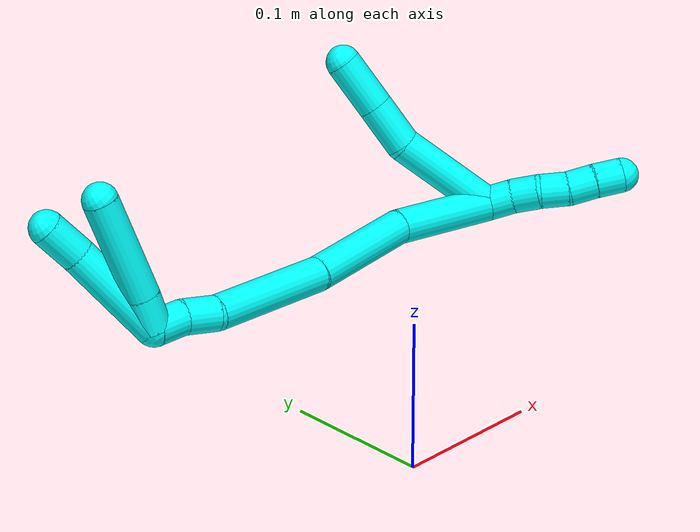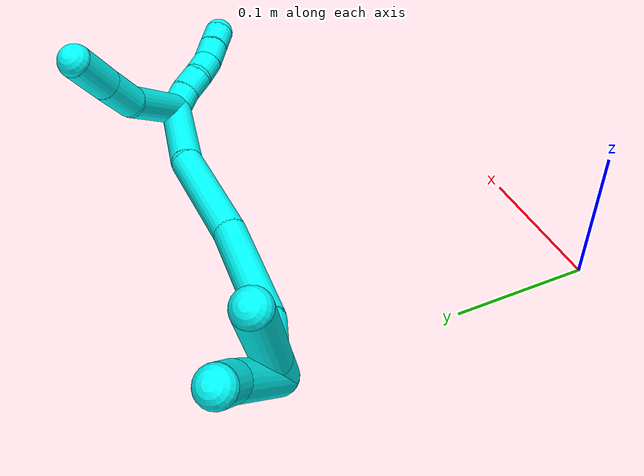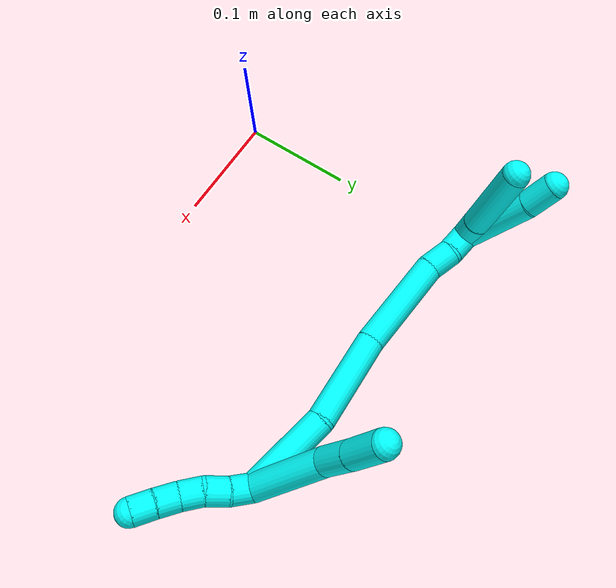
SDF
<sdf version="1.7">
 <world name="default">
  <model name="3">
   <static>0</static>
   <link name="3">
    <collision name="collision-cylinder-e_1_2_8">
     <pose>-0.011875 -0.002019 -0.036194 3.08586 -0.316577 -2.79582</pose>
     <geometry><cylinder><radius>0.0125</radius><length>0.076292</length></cylinder></geometry>
     <surface>
      <friction><ode><mu>1.16</mu><mu2>1.16</mu2><slip1>0</slip1><slip2>0</slip2></ode></friction>
      <contact><ode><kp>1e+06</kp><kd>1</kd><max_vel>0</max_vel><min_depth>0.001</min_depth></ode></contact>
     </surface>
    </collision>
    <visual name="visual-cylinder-e_1_2_8">
     <pose>-0.011875 -0.002019 -0.036194 3.08586 -0.316577 -2.79582</pose>
     <geometry><cylinder><radius>0.0125</radius><length>0.076292</length></cylinder></geometry>
     <material><ambient>0.003922 1 0.996078 1</ambient></material>
    </visual>
    <collision name="collision-cylinder-e_2_8_9">
     <pose>-0.024077 -0.007121 -0.089459 2.96297 -0.018819 -0.20939</pose>
     <geometry><cylinder><radius>0.0125</radius><length>0.0347</length></cylinder></geometry>
     <surface>
      <friction><ode><mu>1.16</mu><mu2>1.16</mu2><slip1>0</slip1><slip2>0</slip2></ode></friction>
      <contact><ode><kp>1e+06</kp><kd>1</kd><max_vel>0</max_vel><min_depth>0.001</min_depth></ode></contact>
     </surface>
    </collision>
    <visual name="visual-cylinder-e_2_8_9">
     <pose>-0.024077 -0.007121 -0.089459 2.96297 -0.018819 -0.20939</pose>
     <geometry><cylinder><radius>0.0125</radius><length>0.0347</length></cylinder></geometry>
     <material><ambient>0.003922 1 0.996078 1</ambient></material>
    </visual>
    <collision name="collision-cylinder-e_3_9_6">
     <pose>-0.024703 -0.012903 -0.125844 3.00269 -0.015343 -0.219671</pose>
     <geometry><cylinder><radius>0.0125</radius><length>0.039008</length></cylinder></geometry>
     <surface>
      <friction><ode><mu>1.16</mu><mu2>1.16</mu2><slip1>0</slip1><slip2>0</slip2></ode></friction>
      <contact><ode><kp>1e+06</kp><kd>1</kd><max_vel>0</max_vel><min_depth>0.001</min_depth></ode></contact>
     </surface>
    </collision>
    <visual name="visual-cylinder-e_3_9_6">
     <pose>-0.024703 -0.012903 -0.125844 3.00269 -0.015343 -0.219671</pose>
     <geometry><cylinder><radius>0.0125</radius><length>0.039008</length></cylinder></geometry>
     <material><ambient>0.003922 1 0.996078 1</ambient></material>
    </visual>
    <collision name="collision-cylinder-e_1_2_10">
     <pose>0.009548 0.000389 0.002947 -0.131381 1.26897 -0.096761</pose>
     <geometry><cylinder><radius>0.0125</radius><length>0.02</length></cylinder></geometry>
     <surface>
      <friction><ode><mu>1.16</mu><mu2>1.16</mu2><slip1>0</slip1><slip2>0</slip2></ode></friction>
      <contact><ode><kp>1e+06</kp><kd>1</kd><max_vel>0</max_vel><min_depth>0.001</min_depth></ode></contact>
     </surface>
    </collision>
    <visual name="visual-cylinder-e_1_2_10">
     <pose>0.009548 0.000389 0.002947 -0.131381 1.26897 -0.096761</pose>
     <geometry><cylinder><radius>0.0125</radius><length>0.02</length></cylinder></geometry>
     <material><ambient>0.003922 1 0.996078 1</ambient></material>
    </visual>
    <collision name="collision-cylinder-e_2_10_11">
     <pose>0.028309 0.002963 0.009112 -0.596347 1.17133 -0.402198</pose>
     <geometry><cylinder><radius>0.0125</radius><length>0.02</length></cylinder></geometry>
     <surface>
      <friction><ode><mu>1.16</mu><mu2>1.16</mu2><slip1>0</slip1><slip2>0</slip2></ode></friction>
      <contact><ode><kp>1e+06</kp><kd>1</kd><max_vel>0</max_vel><min_depth>0.001</min_depth></ode></contact>
     </surface>
    </collision>
    <visual name="visual-cylinder-e_2_10_11">
     <pose>0.028309 0.002963 0.009112 -0.596347 1.17133 -0.402198</pose>
     <geometry><cylinder><radius>0.0125</radius><length>0.02</length></cylinder></geometry>
     <material><ambient>0.003922 1 0.996078 1</ambient></material>
    </visual>
    <collision name="collision-cylinder-e_3_11_12">
     <pose>0.046242 0.005453 0.017215 -0.062426 1.05937 -0.036558</pose>
     <geometry><cylinder><radius>0.0125</radius><length>0.02</length></cylinder></geometry>
     <surface>
      <friction><ode><mu>1.16</mu><mu2>1.16</mu2><slip1>0</slip1><slip2>0</slip2></ode></friction>
      <contact><ode><kp>1e+06</kp><kd>1</kd><max_vel>0</max_vel><min_depth>0.001</min_depth></ode></contact>
     </surface>
    </collision>
    <visual name="visual-cylinder-e_3_11_12">
     <pose>0.046242 0.005453 0.017215 -0.062426 1.05937 -0.036558</pose>
     <geometry><cylinder><radius>0.0125</radius><length>0.02</length></cylinder></geometry>
     <material><ambient>0.003922 1 0.996078 1</ambient></material>
    </visual>
    <collision name="collision-cylinder-e_4_12_13">
     <pose>0.064297 0.004914 0.025586 0.237517 1.20389 0.163579</pose>
     <geometry><cylinder><radius>0.0125</radius><length>0.02</length></cylinder></geometry>
     <surface>
      <friction><ode><mu>1.16</mu><mu2>1.16</mu2><slip1>0</slip1><slip2>0</slip2></ode></friction>
      <contact><ode><kp>1e+06</kp><kd>1</kd><max_vel>0</max_vel><min_depth>0.001</min_depth></ode></contact>
     </surface>
    </collision>
    <visual name="visual-cylinder-e_4_12_13">
     <pose>0.064297 0.004914 0.025586 0.237517 1.20389 0.163579</pose>
     <geometry><cylinder><radius>0.0125</radius><length>0.02</length></cylinder></geometry>
     <material><ambient>0.003922 1 0.996078 1</ambient></material>
    </visual>
    <collision name="collision-cylinder-e_5_13_5">
     <pose>0.082656 0.002975 0.033238 0.257071 1.12555 0.162705</pose>
     <geometry><cylinder><radius>0.0125</radius><length>0.02</length></cylinder></geometry>
     <surface>
      <friction><ode><mu>1.16</mu><mu2>1.16</mu2><slip1>0</slip1><slip2>0</slip2></ode></friction>
      <contact><ode><kp>1e+06</kp><kd>1</kd><max_vel>0</max_vel><min_depth>0.001</min_depth></ode></contact>
     </surface>
    </collision>
    <visual name="visual-cylinder-e_5_13_5">
     <pose>0.082656 0.002975 0.033238 0.257071 1.12555 0.162705</pose>
     <geometry><cylinder><radius>0.0125</radius><length>0.02</length></cylinder></geometry>
     <material><ambient>0.003922 1 0.996078 1</ambient></material>
    </visual>
    <collision name="collision-cylinder-e_1_2_14">
     <pose>-0.027312 0.019993 -0.019486 -2.34336 -0.774429 1.53717</pose>
     <geometry><cylinder><radius>0.0125</radius><length>0.078112</length></cylinder></geometry>
     <surface>
      <friction><ode><mu>1.16</mu><mu2>1.16</mu2><slip1>0</slip1><slip2>0</slip2></ode></friction>
      <contact><ode><kp>1e+06</kp><kd>1</kd><max_vel>0</max_vel><min_depth>0.001</min_depth></ode></contact>
     </surface>
    </collision>
    <visual name="visual-cylinder-e_1_2_14">
     <pose>-0.027312 0.019993 -0.019486 -2.34336 -0.774429 1.53717</pose>
     <geometry><cylinder><radius>0.0125</radius><length>0.078112</length></cylinder></geometry>
     <material><ambient>0.003922 1 0.996078 1</ambient></material>
    </visual>
    <collision name="collision-cylinder-e_2_14_15">
     <pose>-0.08135 0.069649 -0.052649 -2.0028 -0.685726 1.0174</pose>
     <geometry><cylinder><radius>0.0125</radius><length>0.08441</length></cylinder></geometry>
     <surface>
      <friction><ode><mu>1.16</mu><mu2>1.16</mu2><slip1>0</slip1><slip2>0</slip2></ode></friction>
      <contact><ode><kp>1e+06</kp><kd>1</kd><max_vel>0</max_vel><min_depth>0.001</min_depth></ode></contact>
     </surface>
    </collision>
    <visual name="visual-cylinder-e_2_14_15">
     <pose>-0.08135 0.069649 -0.052649 -2.0028 -0.685726 1.0174</pose>
     <geometry><cylinder><radius>0.0125</radius><length>0.08441</length></cylinder></geometry>
     <material><ambient>0.003922 1 0.996078 1</ambient></material>
    </visual>
    <collision name="collision-cylinder-e_3_15_16">
     <pose>-0.137589 0.126803 -0.085571 -2.18161 -0.721368 1.25398</pose>
     <geometry><cylinder><radius>0.0125</radius><length>0.089378</length></cylinder></geometry>
     <surface>
      <friction><ode><mu>1.16</mu><mu2>1.16</mu2><slip1>0</slip1><slip2>0</slip2></ode></friction>
      <contact><ode><kp>1e+06</kp><kd>1</kd><max_vel>0</max_vel><min_depth>0.001</min_depth></ode></contact>
     </surface>
    </collision>
    <visual name="visual-cylinder-e_3_15_16">
     <pose>-0.137589 0.126803 -0.085571 -2.18161 -0.721368 1.25398</pose>
     <geometry><cylinder><radius>0.0125</radius><length>0.089378</length></cylinder></geometry>
     <material><ambient>0.003922 1 0.996078 1</ambient></material>
    </visual>
    <collision name="collision-cylinder-e_4_16_17">
     <pose>-0.175955 0.158891 -0.112127 -2.57999 -0.797799 1.94139</pose>
     <geometry><cylinder><radius>0.0125</radius><length>0.024734</length></cylinder></geometry>
     <surface>
      <friction><ode><mu>1.16</mu><mu2>1.16</mu2><slip1>0</slip1><slip2>0</slip2></ode></friction>
      <contact><ode><kp>1e+06</kp><kd>1</kd><max_vel>0</max_vel><min_depth>0.001</min_depth></ode></contact>
     </surface>
    </collision>
    <visual name="visual-cylinder-e_4_16_17">
     <pose>-0.175955 0.158891 -0.112127 -2.57999 -0.797799 1.94139</pose>
     <geometry><cylinder><radius>0.0125</radius><length>0.024734</length></cylinder></geometry>
     <material><ambient>0.003922 1 0.996078 1</ambient></material>
    </visual>
    <collision name="collision-cylinder-e_5_17_1">
     <pose>-0.193086 0.170233 -0.124178 -2.18368 -0.787497 1.34952</pose>
     <geometry><cylinder><radius>0.0125</radius><length>0.023366</length></cylinder></geometry>
     <surface>
      <friction><ode><mu>1.16</mu><mu2>1.16</mu2><slip1>0</slip1><slip2>0</slip2></ode></friction>
      <contact><ode><kp>1e+06</kp><kd>1</kd><max_vel>0</max_vel><min_depth>0.001</min_depth></ode></contact>
     </surface>
    </collision>
    <visual name="visual-cylinder-e_5_17_1">
     <pose>-0.193086 0.170233 -0.124178 -2.18368 -0.787497 1.34952</pose>
     <geometry><cylinder><radius>0.0125</radius><length>0.023366</length></cylinder></geometry>
     <material><ambient>0.003922 1 0.996078 1</ambient></material>
    </visual>
    <collision name="collision-cylinder-e_1_1_18">
     <pose>-0.197478 0.176737 -0.141078 3.12186 0.309304 3.0152</pose>
     <geometry><cylinder><radius>0.0125</radius><length>0.025532</length></cylinder></geometry>
     <surface>
      <friction><ode><mu>1.16</mu><mu2>1.16</mu2><slip1>0</slip1><slip2>0</slip2></ode></friction>
      <contact><ode><kp>1e+06</kp><kd>1</kd><max_vel>0</max_vel><min_depth>0.001</min_depth></ode></contact>
     </surface>
    </collision>
    <visual name="visual-cylinder-e_1_1_18">
     <pose>-0.197478 0.176737 -0.141078 3.12186 0.309304 3.0152</pose>
     <geometry><cylinder><radius>0.0125</radius><length>0.025532</length></cylinder></geometry>
     <material><ambient>0.003922 1 0.996078 1</ambient></material>
    </visual>
    <collision name="collision-cylinder-e_2_18_4">
     <pose>-0.184062 0.177458 -0.189217 -3.11488 0.258837 -2.93704</pose>
     <geometry><cylinder><radius>0.0125</radius><length>0.074468</length></cylinder></geometry>
     <surface>
      <friction><ode><mu>1.16</mu><mu2>1.16</mu2><slip1>0</slip1><slip2>0</slip2></ode></friction>
      <contact><ode><kp>1e+06</kp><kd>1</kd><max_vel>0</max_vel><min_depth>0.001</min_depth></ode></contact>
     </surface>
    </collision>
    <visual name="visual-cylinder-e_2_18_4">
     <pose>-0.184062 0.177458 -0.189217 -3.11488 0.258837 -2.93704</pose>
     <geometry><cylinder><radius>0.0125</radius><length>0.074468</length></cylinder></geometry>
     <material><ambient>0.003922 1 0.996078 1</ambient></material>
    </visual>
    <collision name="collision-cylinder-e_1_1_19">
     <pose>-0.20678 0.173282 -0.164018 3.03671 -0.152288 -1.9363</pose>
     <geometry><cylinder><radius>0.0125</radius><length>0.071409</length></cylinder></geometry>
     <surface>
      <friction><ode><mu>1.16</mu><mu2>1.16</mu2><slip1>0</slip1><slip2>0</slip2></ode></friction>
      <contact><ode><kp>1e+06</kp><kd>1</kd><max_vel>0</max_vel><min_depth>0.001</min_depth></ode></contact>
     </surface>
    </collision>
    <visual name="visual-cylinder-e_1_1_19">
     <pose>-0.20678 0.173282 -0.164018 3.03671 -0.152288 -1.9363</pose>
     <geometry><cylinder><radius>0.0125</radius><length>0.071409</length></cylinder></geometry>
     <material><ambient>0.003922 1 0.996078 1</ambient></material>
    </visual>
    <collision name="collision-cylinder-e_2_19_3">
     <pose>-0.214458 0.170248 -0.213215 -3.09478 -0.158816 2.56931</pose>
     <geometry><cylinder><radius>0.0125</radius><length>0.028591</length></cylinder></geometry>
     <surface>
      <friction><ode><mu>1.16</mu><mu2>1.16</mu2><slip1>0</slip1><slip2>0</slip2></ode></friction>
      <contact><ode><kp>1e+06</kp><kd>1</kd><max_vel>0</max_vel><min_depth>0.001</min_depth></ode></contact>
     </surface>
    </collision>
    <visual name="visual-cylinder-e_2_19_3">
     <pose>-0.214458 0.170248 -0.213215 -3.09478 -0.158816 2.56931</pose>
     <geometry><cylinder><radius>0.0125</radius><length>0.028591</length></cylinder></geometry>
     <material><ambient>0.003922 1 0.996078 1</ambient></material>
    </visual>
    <collision name="collision-sphere-3">
     <pose>-0.216719 0.170908 -0.227315 0 -0 0</pose>
     <geometry><sphere><radius>0.0125</radius></sphere></geometry>
     <surface>
      <friction><ode><mu>1.16</mu><mu2>1.16</mu2><slip1>0</slip1><slip2>0</slip2></ode></friction>
      <contact><ode><kp>1e+06</kp><kd>1</kd><max_vel>0</max_vel><min_depth>0.001</min_depth></ode></contact>
     </surface>
    </collision>
    <visual name="visual-sphere-3">
     <pose>-0.216719 0.170908 -0.227315 0 -0 0</pose>
     <geometry><sphere><radius>0.0125</radius></sphere></geometry>
     <material><ambient>0.003922 1 0.996078 1</ambient></material>
    </visual>
    <collision name="collision-sphere-19">
     <pose>-0.212197 0.169587 -0.199115 0 -0 0</pose>
     <geometry><sphere><radius>0.0125</radius></sphere></geometry>
     <surface>
      <friction><ode><mu>1.16</mu><mu2>1.16</mu2><slip1>0</slip1><slip2>0</slip2></ode></friction>
      <contact><ode><kp>1e+06</kp><kd>1</kd><max_vel>0</max_vel><min_depth>0.001</min_depth></ode></contact>
     </surface>
    </collision>
    <visual name="visual-sphere-19">
     <pose>-0.212197 0.169587 -0.199115 0 -0 0</pose>
     <geometry><sphere><radius>0.0125</radius></sphere></geometry>
     <material><ambient>0.003922 1 0.996078 1</ambient></material>
    </visual>
    <collision name="collision-sphere-11">
     <pose>0.037521 0.005147 0.01233 0 -0 0</pose>
     <geometry><sphere><radius>0.0125</radius></sphere></geometry>
     <surface>
      <friction><ode><mu>1.16</mu><mu2>1.16</mu2><slip1>0</slip1><slip2>0</slip2></ode></friction>
      <contact><ode><kp>1e+06</kp><kd>1</kd><max_vel>0</max_vel><min_depth>0.001</min_depth></ode></contact>
     </surface>
    </collision>
    <visual name="visual-sphere-11">
     <pose>0.037521 0.005147 0.01233 0 -0 0</pose>
     <geometry><sphere><radius>0.0125</radius></sphere></geometry>
     <material><ambient>0.003922 1 0.996078 1</ambient></material>
    </visual>
    <collision name="collision-sphere-10">
     <pose>0.019096 0.000779 0.005894 0 -0 0</pose>
     <geometry><sphere><radius>0.0125</radius></sphere></geometry>
     <surface>
      <friction><ode><mu>1.16</mu><mu2>1.16</mu2><slip1>0</slip1><slip2>0</slip2></ode></friction>
      <contact><ode><kp>1e+06</kp><kd>1</kd><max_vel>0</max_vel><min_depth>0.001</min_depth></ode></contact>
     </surface>
    </collision>
    <visual name="visual-sphere-10">
     <pose>0.019096 0.000779 0.005894 0 -0 0</pose>
     <geometry><sphere><radius>0.0125</radius></sphere></geometry>
     <material><ambient>0.003922 1 0.996078 1</ambient></material>
    </visual>
    <collision name="collision-sphere-6">
     <pose>-0.025002 -0.015603 -0.145158 0 -0 0</pose>
     <geometry><sphere><radius>0.0125</radius></sphere></geometry>
     <surface>
      <friction><ode><mu>1.16</mu><mu2>1.16</mu2><slip1>0</slip1><slip2>0</slip2></ode></friction>
      <contact><ode><kp>1e+06</kp><kd>1</kd><max_vel>0</max_vel><min_depth>0.001</min_depth></ode></contact>
     </surface>
    </collision>
    <visual name="visual-sphere-6">
     <pose>-0.025002 -0.015603 -0.145158 0 -0 0</pose>
     <geometry><sphere><radius>0.0125</radius></sphere></geometry>
     <material><ambient>0.003922 1 0.996078 1</ambient></material>
    </visual>
    <collision name="collision-sphere-9">
     <pose>-0.024404 -0.010203 -0.10653 0 -0 0</pose>
     <geometry><sphere><radius>0.0125</radius></sphere></geometry>
     <surface>
      <friction><ode><mu>1.16</mu><mu2>1.16</mu2><slip1>0</slip1><slip2>0</slip2></ode></friction>
      <contact><ode><kp>1e+06</kp><kd>1</kd><max_vel>0</max_vel><min_depth>0.001</min_depth></ode></contact>
     </surface>
    </collision>
    <visual name="visual-sphere-9">
     <pose>-0.024404 -0.010203 -0.10653 0 -0 0</pose>
     <geometry><sphere><radius>0.0125</radius></sphere></geometry>
     <material><ambient>0.003922 1 0.996078 1</ambient></material>
    </visual>
    <collision name="collision-sphere-2">
     <geometry><sphere><radius>0.0125</radius></sphere></geometry>
     <surface>
      <friction><ode><mu>1.16</mu><mu2>1.16</mu2><slip1>0</slip1><slip2>0</slip2></ode></friction>
      <contact><ode><kp>1e+06</kp><kd>1</kd><max_vel>0</max_vel><min_depth>0.001</min_depth></ode></contact>
     </surface>
    </collision>
    <visual name="visual-sphere-2">
     <geometry><sphere><radius>0.0125</radius></sphere></geometry>
     <material><ambient>0.003922 1 0.996078 1</ambient></material>
    </visual>
    <collision name="collision-sphere-8">
     <pose>-0.023751 -0.004039 -0.072388 0 -0 0</pose>
     <geometry><sphere><radius>0.0125</radius></sphere></geometry>
     <surface>
      <friction><ode><mu>1.16</mu><mu2>1.16</mu2><slip1>0</slip1><slip2>0</slip2></ode></friction>
      <contact><ode><kp>1e+06</kp><kd>1</kd><max_vel>0</max_vel><min_depth>0.001</min_depth></ode></contact>
     </surface>
    </collision>
    <visual name="visual-sphere-8">
     <pose>-0.023751 -0.004039 -0.072388 0 -0 0</pose>
     <geometry><sphere><radius>0.0125</radius></sphere></geometry>
     <material><ambient>0.003922 1 0.996078 1</ambient></material>
    </visual>
    <collision name="collision-sphere-12">
     <pose>0.054962 0.005758 0.022099 0 -0 0</pose>
     <geometry><sphere><radius>0.0125</radius></sphere></geometry>
     <surface>
      <friction><ode><mu>1.16</mu><mu2>1.16</mu2><slip1>0</slip1><slip2>0</slip2></ode></friction>
      <contact><ode><kp>1e+06</kp><kd>1</kd><max_vel>0</max_vel><min_depth>0.001</min_depth></ode></contact>
     </surface>
    </collision>
    <visual name="visual-sphere-12">
     <pose>0.054962 0.005758 0.022099 0 -0 0</pose>
     <geometry><sphere><radius>0.0125</radius></sphere></geometry>
     <material><ambient>0.003922 1 0.996078 1</ambient></material>
    </visual>
    <collision name="collision-sphere-13">
     <pose>0.073631 0.00407 0.029072 0 -0 0</pose>
     <geometry><sphere><radius>0.0125</radius></sphere></geometry>
     <surface>
      <friction><ode><mu>1.16</mu><mu2>1.16</mu2><slip1>0</slip1><slip2>0</slip2></ode></friction>
      <contact><ode><kp>1e+06</kp><kd>1</kd><max_vel>0</max_vel><min_depth>0.001</min_depth></ode></contact>
     </surface>
    </collision>
    <visual name="visual-sphere-13">
     <pose>0.073631 0.00407 0.029072 0 -0 0</pose>
     <geometry><sphere><radius>0.0125</radius></sphere></geometry>
     <material><ambient>0.003922 1 0.996078 1</ambient></material>
    </visual>
    <collision name="collision-sphere-5">
     <pose>0.091681 0.00188 0.037403 0 -0 0</pose>
     <geometry><sphere><radius>0.0125</radius></sphere></geometry>
     <surface>
      <friction><ode><mu>1.16</mu><mu2>1.16</mu2><slip1>0</slip1><slip2>0</slip2></ode></friction>
      <contact><ode><kp>1e+06</kp><kd>1</kd><max_vel>0</max_vel><min_depth>0.001</min_depth></ode></contact>
     </surface>
    </collision>
    <visual name="visual-sphere-5">
     <pose>0.091681 0.00188 0.037403 0 -0 0</pose>
     <geometry><sphere><radius>0.0125</radius></sphere></geometry>
     <material><ambient>0.003922 1 0.996078 1</ambient></material>
    </visual>
    <collision name="collision-sphere-14">
     <pose>-0.054624 0.039985 -0.038972 0 -0 0</pose>
     <geometry><sphere><radius>0.0125</radius></sphere></geometry>
     <surface>
      <friction><ode><mu>1.16</mu><mu2>1.16</mu2><slip1>0</slip1><slip2>0</slip2></ode></friction>
      <contact><ode><kp>1e+06</kp><kd>1</kd><max_vel>0</max_vel><min_depth>0.001</min_depth></ode></contact>
     </surface>
    </collision>
    <visual name="visual-sphere-14">
     <pose>-0.054624 0.039985 -0.038972 0 -0 0</pose>
     <geometry><sphere><radius>0.0125</radius></sphere></geometry>
     <material><ambient>0.003922 1 0.996078 1</ambient></material>
    </visual>
    <collision name="collision-sphere-15">
     <pose>-0.108076 0.099313 -0.066325 0 -0 0</pose>
     <geometry><sphere><radius>0.0125</radius></sphere></geometry>
     <surface>
      <friction><ode><mu>1.16</mu><mu2>1.16</mu2><slip1>0</slip1><slip2>0</slip2></ode></friction>
      <contact><ode><kp>1e+06</kp><kd>1</kd><max_vel>0</max_vel><min_depth>0.001</min_depth></ode></contact>
     </surface>
    </collision>
    <visual name="visual-sphere-15">
     <pose>-0.108076 0.099313 -0.066325 0 -0 0</pose>
     <geometry><sphere><radius>0.0125</radius></sphere></geometry>
     <material><ambient>0.003922 1 0.996078 1</ambient></material>
    </visual>
    <collision name="collision-sphere-16">
     <pose>-0.167102 0.154292 -0.104818 0 -0 0</pose>
     <geometry><sphere><radius>0.0125</radius></sphere></geometry>
     <surface>
      <friction><ode><mu>1.16</mu><mu2>1.16</mu2><slip1>0</slip1><slip2>0</slip2></ode></friction>
      <contact><ode><kp>1e+06</kp><kd>1</kd><max_vel>0</max_vel><min_depth>0.001</min_depth></ode></contact>
     </surface>
    </collision>
    <visual name="visual-sphere-16">
     <pose>-0.167102 0.154292 -0.104818 0 -0 0</pose>
     <geometry><sphere><radius>0.0125</radius></sphere></geometry>
     <material><ambient>0.003922 1 0.996078 1</ambient></material>
    </visual>
    <collision name="collision-sphere-17">
     <pose>-0.184807 0.16349 -0.119436 0 -0 0</pose>
     <geometry><sphere><radius>0.0125</radius></sphere></geometry>
     <surface>
      <friction><ode><mu>1.16</mu><mu2>1.16</mu2><slip1>0</slip1><slip2>0</slip2></ode></friction>
      <contact><ode><kp>1e+06</kp><kd>1</kd><max_vel>0</max_vel><min_depth>0.001</min_depth></ode></contact>
     </surface>
    </collision>
    <visual name="visual-sphere-17">
     <pose>-0.184807 0.16349 -0.119436 0 -0 0</pose>
     <geometry><sphere><radius>0.0125</radius></sphere></geometry>
     <material><ambient>0.003922 1 0.996078 1</ambient></material>
    </visual>
    <collision name="collision-sphere-1">
     <pose>-0.201364 0.176976 -0.12892 0 -0 0</pose>
     <geometry><sphere><radius>0.0125</radius></sphere></geometry>
     <surface>
      <friction><ode><mu>1.16</mu><mu2>1.16</mu2><slip1>0</slip1><slip2>0</slip2></ode></friction>
      <contact><ode><kp>1e+06</kp><kd>1</kd><max_vel>0</max_vel><min_depth>0.001</min_depth></ode></contact>
     </surface>
    </collision>
    <visual name="visual-sphere-1">
     <pose>-0.201364 0.176976 -0.12892 0 -0 0</pose>
     <geometry><sphere><radius>0.0125</radius></sphere></geometry>
     <material><ambient>0.003922 1 0.996078 1</ambient></material>
    </visual>
    <collision name="collision-sphere-18">
     <pose>-0.193592 0.176497 -0.153236 0 -0 0</pose>
     <geometry><sphere><radius>0.0125</radius></sphere></geometry>
     <surface>
      <friction><ode><mu>1.16</mu><mu2>1.16</mu2><slip1>0</slip1><slip2>0</slip2></ode></friction>
      <contact><ode><kp>1e+06</kp><kd>1</kd><max_vel>0</max_vel><min_depth>0.001</min_depth></ode></contact>
     </surface>
    </collision>
    <visual name="visual-sphere-18">
     <pose>-0.193592 0.176497 -0.153236 0 -0 0</pose>
     <geometry><sphere><radius>0.0125</radius></sphere></geometry>
     <material><ambient>0.003922 1 0.996078 1</ambient></material>
    </visual>
    <collision name="collision-sphere-4">
     <pose>-0.174532 0.178419 -0.225198 0 -0 0</pose>
     <geometry><sphere><radius>0.0125</radius></sphere></geometry>
     <surface>
      <friction><ode><mu>1.16</mu><mu2>1.16</mu2><slip1>0</slip1><slip2>0</slip2></ode></friction>
      <contact><ode><kp>1e+06</kp><kd>1</kd><max_vel>0</max_vel><min_depth>0.001</min_depth></ode></contact>
     </surface>
    </collision>
    <visual name="visual-sphere-4">
     <pose>-0.174532 0.178419 -0.225198 0 -0 0</pose>
     <geometry><sphere><radius>0.0125</radius></sphere></geometry>
     <material><ambient>0.003922 1 0.996078 1</ambient></material>
    </visual>
    <inertial>
     <pose>-0.090522 0.08144 -0.08507 0 -0 0</pose>
     <mass>0.75</mass>
     <inertia>
      <ixx>1.6e-05</ixx>
      <ixy>0</ixy>
      <ixz>0</ixz>
      <iyy>0.000221</iyy>
      <iyz>0</iyz>
      <izz>-1.8e-05</izz>
     </inertia>
    </inertial>
   </link>
   <pose>0.289375 0.204528 0.014887 3.10372 -0.60133 -0.712739</pose>
  </model>
 </world>
</sdf>
